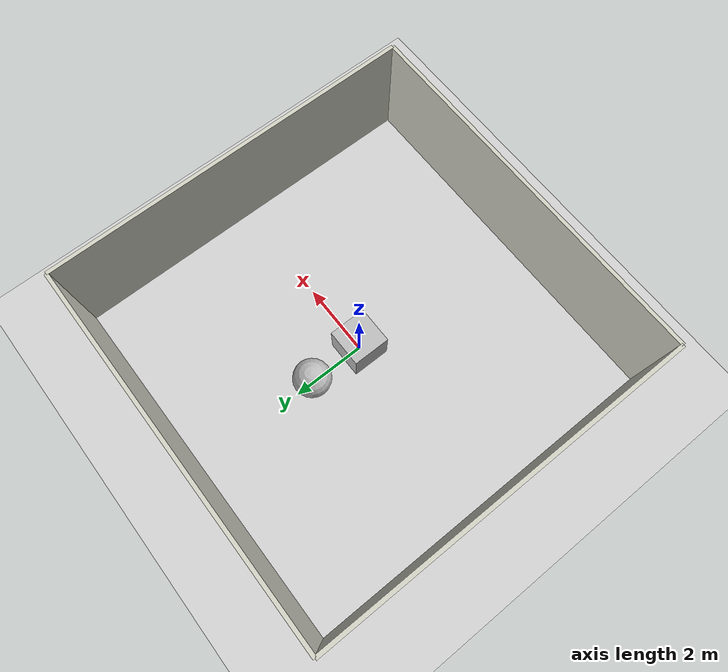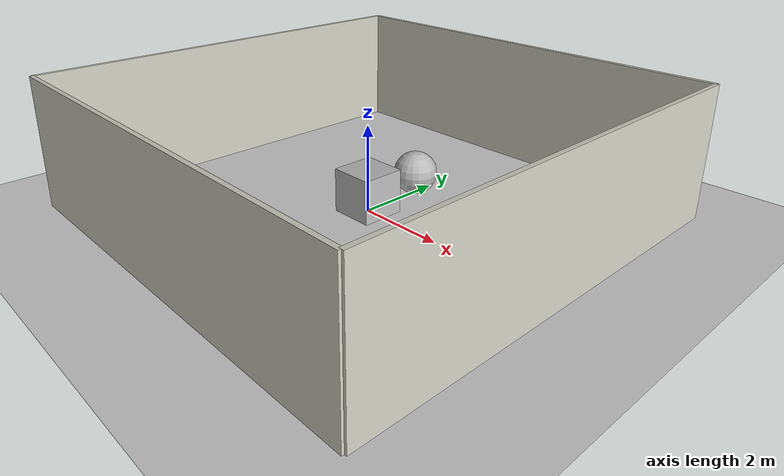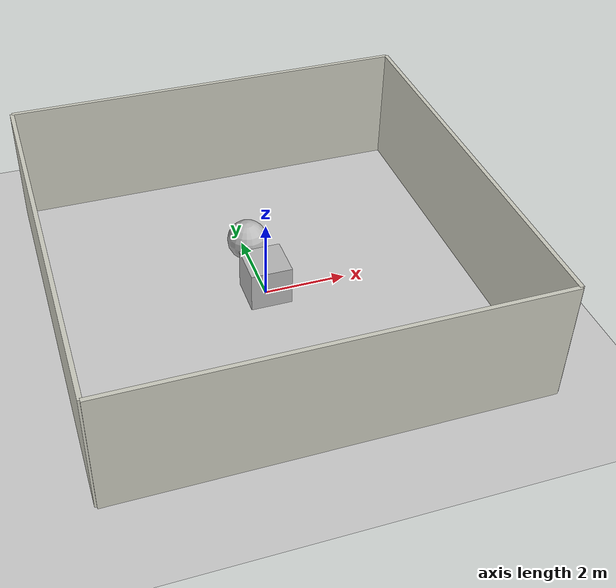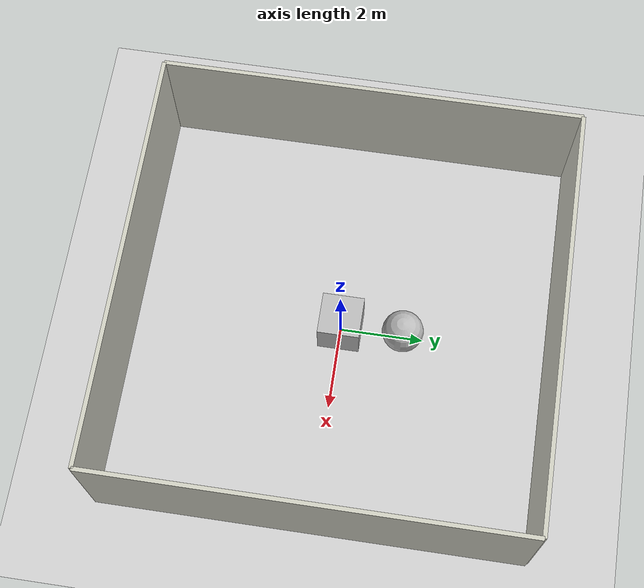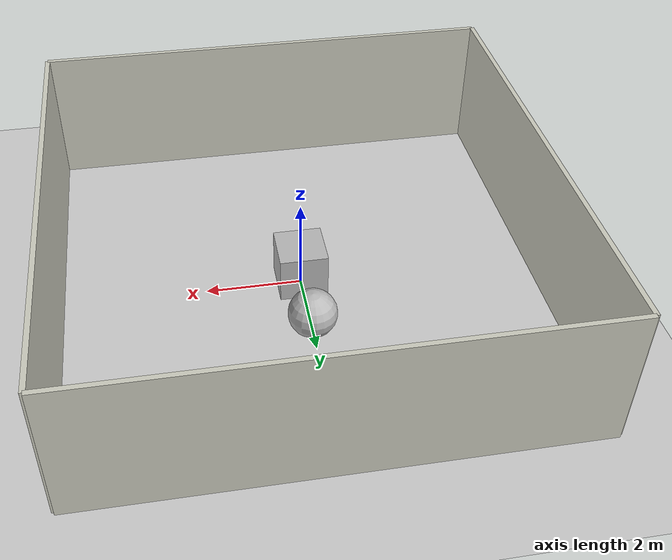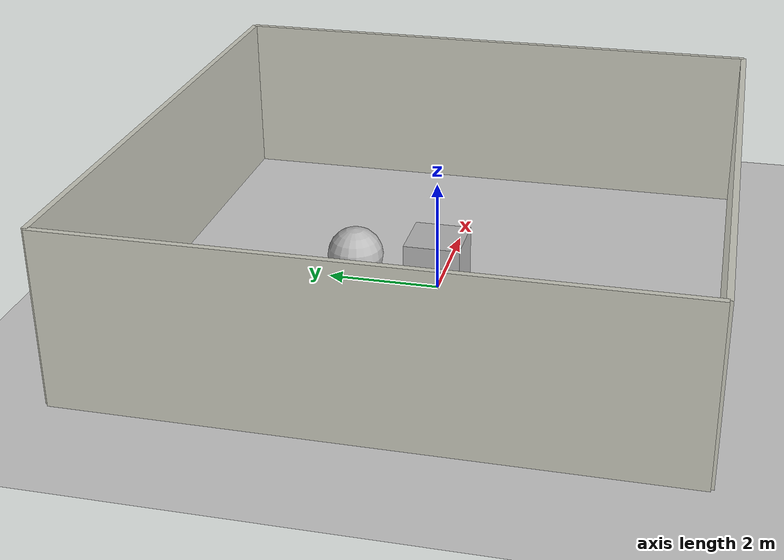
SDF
<sdf version="1.5">
 <world name="default">
  <model name="box">
   <pose>0 0 0.5 0 0 0</pose>
   <link name="link">
    <collision name="collision"><geometry><box><size>1 1 1</size></box></geometry></collision>
    <visual name="visual"><geometry><box><size>1 1 1</size></box></geometry></visual>
   </link>
  </model>
  <model name="sphere">
   <pose>0 1.5 0.5 0 0 0</pose>
   <link name="link">
    <collision name="collision"><geometry><sphere><radius>0.5</radius></sphere></geometry></collision>
    <visual name="visual"><geometry><sphere><radius>0.5</radius></sphere></geometry></visual>
   </link>
  </model>
  <plugin name="arrange_plugin" filename="libArrangePlugin.so">
   <topic_name>~/arrange</topic_name>
   <model_name>box</model_name>
   <model_name>sphere</model_name>
   <initial_arrangement>box_bottom</initial_arrangement>
   <arrangement name="box_bottom">
    <pose model="box">0 0 0.5 0 0 0</pose>
    <pose model="sphere">0 0 1.0 0 0 0</pose>
   </arrangement>
   <arrangement name="sphere_bottom">
    <pose model="box">0 0 1.0 0 0 0</pose>
    <pose model="sphere">0 0 0.5 0 0 0</pose>
   </arrangement>
  </plugin>
  <scene><shadows>1</shadows></scene>
  <model name="oculus">
   <static>true</static>
   <pose>0 -1.1 1.6 0 0 1.5707</pose>
   <link name="link">
    <visual name="visual"><geometry><box><size>.0001 .0001 .0001</size></box></geometry></visual>
   </link>
  </model>
  <model name="walls">
   <static>true</static>
   <link name="link">
    <visual name="visual_1">
     <pose>0 5 1.5 0 0 0</pose>
     <geometry><box><size>10 0.1 3.0</size></box></geometry>
     <material><script><name>Gazebo/PaintedWall</name></script></material>
    </visual>
    <visual name="visual_2">
     <pose>5 0 1.5 0 0 0</pose>
     <geometry><box><size>0.1 10 3.0</size></box></geometry>
     <material><script><name>Gazebo/PaintedWall</name></script></material>
    </visual>
    <visual name="visual_3">
     <pose>0 -5 1.5 0 0 0</pose>
     <geometry><box><size>10 0.1 3.0</size></box></geometry>
     <material><script><name>Gazebo/PaintedWall</name></script></material>
    </visual>
    <visual name="visual_4">
     <pose>-5 0 1.5 0 0 0</pose>
     <geometry><box><size>0.1 10 3.0</size></box></geometry>
     <material><script><name>Gazebo/PaintedWall</name></script></material>
    </visual>
   </link>
  </model>
  <physics type="ode">
   <gravity>0.000000 0.000000 -9.810000</gravity>
   <ode>
    <solver><type>quick</type><iters>100</iters><precon_iters>0</precon_iters><sor>1.000000</sor></solver>
    <constraints>
     <cfm>0.000000</cfm>
     <erp>0.200000</erp>
     <contact_max_correcting_vel>0.000000</contact_max_correcting_vel>
     <contact_surface_layer>0.00000</contact_surface_layer>
    </constraints>
   </ode>
   <bullet>
    <solver><type>sequential_impulse</type><iters>100</iters><sor>1.000000</sor></solver>
    <constraints>
     <cfm>0.000000</cfm>
     <erp>0.200000</erp>
     <split_impulse>true</split_impulse>
     <split_impulse_penetration_threshold>-0.01</split_impulse_penetration_threshold>
     <contact_surface_layer>0.01000</contact_surface_layer>
    </constraints>
   </bullet>
   <simbody>
    <accuracy>0.001</accuracy>
    <max_transient_velocity>0.01</max_transient_velocity>
    <contact>
     <stiffness>1e8</stiffness>
     <dissipation>10</dissipation>
     <static_friction>0.15</static_friction>
     <dynamic_friction>0.1</dynamic_friction>
     <viscous_friction>0.0</viscous_friction>
    </contact>
   </simbody>
   <real_time_update_rate>0.000000</real_time_update_rate>
   <max_step_size>0.001000</max_step_size>
  </physics>
  <light type="directional" name="sun">
   <pose>0 0 100 0 0 0</pose>
   <diffuse>0.8 0.8 0.8 1</diffuse>
   <specular>0.2 0.2 0.2 1</specular>
   <attenuation>
    <range>1000</range>
    <constant>0.9</constant>
    <linear>0.01</linear>
    <quadratic>0.001</quadratic>
   </attenuation>
   <direction>-0.1 0.1 -0.9</direction>
  </light>
  <include><uri>model://ground_plane</uri></include>
  <plugin name="hydra" filename="libHydraPlugin.so"><pivot>0.04 0 0</pivot><grab>0.12 0 0</grab></plugin>
 </world>
</sdf>
